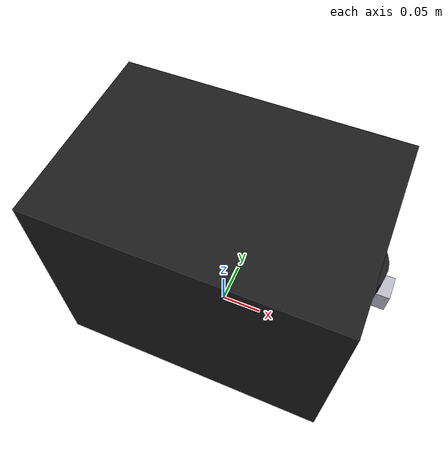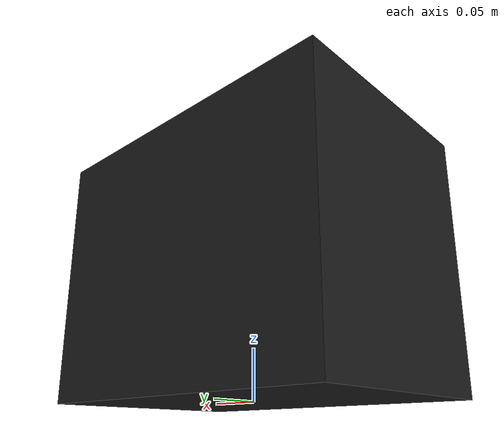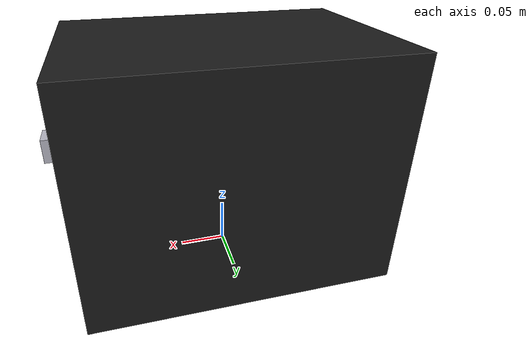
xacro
<?xml version="1.0"?>
<robot name="limo" xmlns:xacro="http://ros.org/wiki/xacro">

  <!-- Propriétés générales -->
  <xacro:property name="pi" value="3.14159265"/>
  <xacro:property name="chassis_length" value="0.322"/>
  <xacro:property name="chassis_width" value="0.220"/>
  <xacro:property name="chassis_height" value="0.251"/>
  <xacro:property name="chassis_mass" value="4.8"/>
  <xacro:property name="wheelbase" value="0.200"/>
  <xacro:property name="tread" value="0.175"/>
  <xacro:property name="wheel_radius" value="0.045"/>
  <xacro:property name="wheel_width" value="0.04"/>
  <xacro:property name="wheel_mass" value="0.2"/>
  <xacro:property name="ground_clearance" value="0.024"/>

  <!-- Châssis principal -->
  <link name="base_link">
    <visual>
      <origin xyz="0 0 ${chassis_height/2}" rpy="0 0 0"/>
      <geometry>
        <box size="${chassis_length} ${chassis_width} ${chassis_height}"/>
      </geometry>
      <material name="limo_body">
        <color rgba="0.1 0.1 0.1 1.0"/>
      </material>
    </visual>
    <collision>
      <origin xyz="0 0 ${chassis_height/2}" rpy="0 0 0"/>
      <geometry>
        <box size="${chassis_length} ${chassis_width} ${chassis_height}"/>
      </geometry>
    </collision>
    <inertial>
      <origin xyz="0 0 ${chassis_height/2}" rpy="0 0 0"/>
      <mass value="${chassis_mass}"/>
      <inertia ixx="0.0395" ixy="0.0" ixz="0.0"
               iyy="0.0538" iyz="0.0" izz="0.0658"/>
    </inertial>
  </link>

  <!-- Macro pour roue -->
  <xacro:macro name="wheel" params="prefix x y">
    <link name="${prefix}_wheel">
      <visual>
        <origin xyz="0 0 0" rpy="${pi/2} 0 0"/>
        <geometry>
          <cylinder radius="${wheel_radius}" length="${wheel_width}"/>
        </geometry>
        <material name="wheel_black">
          <color rgba="0.05 0.05 0.05 1.0"/>
        </material>
      </visual>
      <collision>
        <origin xyz="0 0 0" rpy="${pi/2} 0 0"/>
        <geometry>
          <cylinder radius="${wheel_radius}" length="${wheel_width}"/>
        </geometry>
      </collision>
      <inertial>
        <origin xyz="0 0 0" rpy="${pi/2} 0 0"/>
        <mass value="${wheel_mass}"/>
        <inertia ixx="0.00010845" ixy="0.0" ixz="0.0"
                 iyy="0.00010845" iyz="0.0" izz="0.0002025"/>
      </inertial>
    </link>

    <joint name="${prefix}_wheel_joint" type="continuous">
      <parent link="base_link"/>
      <child link="${prefix}_wheel"/>
      <origin xyz="${x} ${y} ${wheel_radius}" rpy="0 0 0"/>
      <axis xyz="0 1 0"/>
      <dynamics damping="0.1" friction="0.1"/>
    </joint>
  </xacro:macro>

  <!-- Instanciation des 4 roues avec positions fixes -->
  <xacro:wheel prefix="front_left" x="0.1" y="0.0875"/>
  <xacro:wheel prefix="front_right" x="0.1" y="-0.0875"/>
  <xacro:wheel prefix="rear_left" x="-0.1" y="0.0875"/>
  <xacro:wheel prefix="rear_right" x="-0.1" y="-0.0875"/>

  <!-- Capteurs -->
  <!-- LiDAR -->
  <link name="laser_link">
    <visual>
      <origin xyz="0 0 0" rpy="0 0 0"/>
      <geometry>
        <cylinder radius="0.038" length="0.04"/>
      </geometry>
      <material name="lidar_black">
        <color rgba="0.1 0.1 0.1 0.9"/>
      </material>
    </visual>
    <collision>
      <origin xyz="0 0 0" rpy="0 0 0"/>
      <geometry>
        <cylinder radius="0.038" length="0.04"/>
      </geometry>
    </collision>
    <inertial>
      <mass value="0.125"/>
      <origin xyz="0 0 0"/>
      <inertia ixx="0.00010" ixy="0" ixz="0"
               iyy="0.00010" iyz="0" izz="0.00010"/>
    </inertial>
  </link>
  <joint name="laser_joint" type="fixed">
    <parent link="base_link"/>
    <child link="laser_link"/>
    <origin xyz="0.135 0 0.17" rpy="0 0 0"/>
  </joint>

  <!-- Caméra -->
  <link name="camera_link">
    <visual>
      <origin xyz="0 0 0" rpy="0 0 0"/>
      <geometry>
        <box size="0.090 0.025 0.025"/>
      </geometry>
      <material name="camera_aluminum">
        <color rgba="0.7 0.7 0.75 1.0"/>
      </material>
    </visual>
    <collision>
      <origin xyz="0 0 0" rpy="0 0 0"/>
      <geometry>
        <box size="0.090 0.025 0.025"/>
      </geometry>
    </collision>
    <inertial>
      <mass value="0.072"/>
      <inertia ixx="0.00001" ixy="0" ixz="0"
               iyy="0.00001" iyz="0" izz="0.00001"/>
    </inertial>
  </link>
  <joint name="camera_joint" type="fixed">
    <parent link="base_link"/>
    <child link="camera_link"/>
    <origin xyz="0.14 0 0.15" rpy="0 0 0"/>
  </joint>

  <!-- IMU -->
  <link name="imu_link">
    <visual>
      <geometry>
        <box size="0.015 0.015 0.005"/>
      </geometry>
      <material name="imu_green">
        <color rgba="0.1 0.8 0.1 0.8"/>
      </material>
    </visual>
    <inertial>
      <mass value="0.005"/>
      <inertia ixx="0.000001" ixy="0" ixz="0"
               iyy="0.000001" iyz="0" izz="0.000001"/>
    </inertial>
  </link>
  <joint name="imu_joint" type="fixed">
    <parent link="base_link"/>
    <child link="imu_link"/>
    <origin xyz="0 0 0.10" rpy="0 0 0"/>
  </joint>

  <!-- Lumières RGB -->
  <xacro:macro name="rgb_light" params="prefix pos_x pos_y">
    <link name="${prefix}_light">
      <visual>
        <geometry>
          <cylinder radius="0.015" length="0.03"/>
        </geometry>
        <material name="light_rgb">
          <color rgba="1.0 1.0 1.0 0.9"/>
        </material>
      </visual>
    </link>
    <joint name="${prefix}_light_joint" type="fixed">
      <parent link="base_link"/>
      <child link="${prefix}_light"/>
      <origin xyz="${pos_x} ${pos_y} 0.08" rpy="0 ${pi/2} 0"/>
    </joint>
  </xacro:macro>

  <xacro:rgb_light prefix="front_left" pos_x="0.12" pos_y="0.08"/>
  <xacro:rgb_light prefix="front_right" pos_x="0.12" pos_y="-0.08"/>

</robot>
